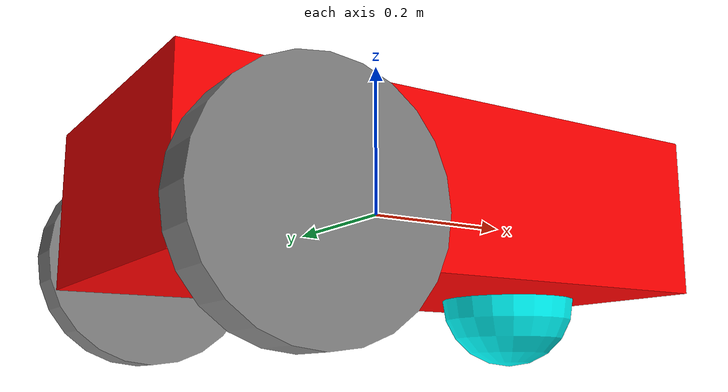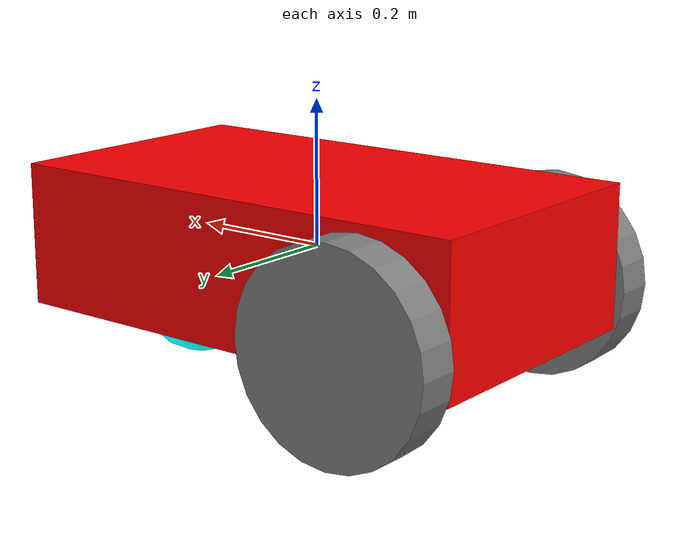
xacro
<?xml version="1.0" ?>
<robot name="ICTE4001Bot" xmlns:xacro="http://ros.org/wiki/xacro">

    <!-- ****************** ROBOT CONSTANTS *******************************  -->

    <!-- Define the size of the robot's main chassis in meters -->
    <xacro:property name="base_width" value="0.39"/>
    <xacro:property name="base_length" value="0.70"/>
    <xacro:property name="base_height" value="0.20"/>

    <!-- Define the shape of the robot's two back wheels in meters -->
    <xacro:property name="wheel_radius" value="0.14"/>
    <xacro:property name="wheel_width" value="0.06"/>
    <!-- Define the gap between the wheel and chassis along y-axis in meters -->
    <xacro:property name="wheel_ygap" value="0.035"/>
    <!-- Position the wheels along the z-axis -->
    <xacro:property name="wheel_zoff" value="0.05"/>
    <!-- Position the wheels along the x-axis -->
    <xacro:property name="wheel_xoff" value="0.221"/>

    <!-- Position the caster wheel along the x-axis -->
    <xacro:property name="caster_xoff" value="0.217"/>

    <!-- ****************** INERTIAL PROPERTY MACROS ************************  -->

    <!-- Define box intertial property macros  -->
    <xacro:macro name="box_inertia" params="m w h d">
        <inertial>
            <mass value="${m}"/>
            <inertia ixx="${(m/12) * (h*h + w*w)}" ixy="0.0" ixz="0.0" iyy="${(m/12) * (h*h + d*d)}" iyz="0.0" izz="${(m/12) * (w*w + d*d)}"/>
        </inertial>
    </xacro:macro>
    <!-- Define cylinder property macros  -->
    <xacro:macro name="cylinder_inertia" params="m r h roll pitch yaw">
		<inertial>
			<origin xyz="0 0 0" rpy="${roll} ${pitch} ${yaw}" />
			<mass value="${m}"/>
			<inertia ixx="${(m/12) * (3*r*r + h*h)}" ixy = "0" ixz = "0" iyy="${(m/12) * (3*r*r + h*h)}" iyz = "0" izz="${(m/2) * (r*r)}"/>
		</inertial>
	</xacro:macro>
    <!-- Define sphere property macros  -->
    <xacro:macro name="sphere_inertia" params="m r">
        <inertial>
            <mass value="${m}"/>
            <inertia ixx="${(2/5) * m * (r*r)}" ixy="0.0" ixz="0.0" iyy="${(2/5) * m * (r*r)}" iyz="0.0" izz="${(2/5) * m * (r*r)}"/>
        </inertial>
    </xacro:macro>
    <!-- ****************** BASE LINK DEFINITIONS ************************  -->
    <link name="base_link">
        <visual>
            <geometry>
                <box size="${base_length} ${base_width} ${base_height}"/>
            </geometry>
            <material name="Red">
                <color rgba="1.0 0.0 0.0 1.0"/>
            </material>
        </visual>
        <collision>
            <geometry>
                <box size="${base_length} ${base_width} ${base_height}"/>
            </geometry>
        </collision>
        <xacro:box_inertia m="15.0" w="${base_width}" d="${base_length}" h="${base_height}"/>
    </link>
    <gazebo reference="base_link">
        <material>Gazebo/Red</material>
    </gazebo>

    <!-- ****************** ROBOT BASE FOOTPRINT ***************************  -->

    <!-- Define the center of the main robot chassis projected on the ground -->
    <link name="base_footprint">
        <xacro:box_inertia m="0" w="0" d="0" h="0"/>
    </link>

    <joint name="base_joint" type="fixed">
        <parent link="base_link"/>
        <child link="base_footprint"/>
        <origin xyz="0.0 0.0 ${-(wheel_radius+wheel_zoff)}" rpy="0 0 0"/>
    </joint>

    <!-- *********************** DRIVE WHEELS ******************************  -->

    <!-- Drive Wheel Macro to Define Two Wheels -->
    <xacro:macro name="wheel" params="prefix x_reflect y_reflect">
        <link name="${prefix}_link">
            <visual>
                <origin xyz="0 0 0" rpy="${pi/2} 0 0"/>
                <geometry>
                    <cylinder radius="${wheel_radius}" length="${wheel_width}"/>
                </geometry>
                <material name="Gray">
                    <color rgba="0.5 0.5 0.5 1.0"/>
                </material>
            </visual>

            <collision>
                <origin xyz="0 0 0" rpy="${pi/2} 0 0"/>
                <geometry>
                    <cylinder radius="${wheel_radius}" length="${wheel_width}"/>
                </geometry>
            </collision>
            <xacro:cylinder_inertia m="0.5" r="${wheel_radius}" h="${wheel_width}" roll = "${pi/2}" pitch = "0.0" yaw = "0.0"/>
        </link>
        <!-- Connect the wheels to the base_link at the appropriate location, and
        define a continuous joint to allow the wheels to freely rotate about
        an axis -->
        <joint name="${prefix}_joint" type="continuous">
			<parent link="base_link"/>
			<child link="${prefix}_link"/>
			<origin xyz="${x_reflect*wheel_xoff} ${y_reflect*(base_width/2+wheel_ygap)} ${-wheel_zoff}" rpy="0 0 0"/>
			<axis xyz="0 1 0"/>
		</joint>

        <gazebo reference="{prefix}_link">
            <mu1>1.0</mu1>
            <mu2>1.0</mu2>
            <kp>1000000.0</kp>
            <kd>100.0</kd>
            <minDepth>0.0001</minDepth>
            <maxVel>1.0</maxVel>
            <material>Gazebo/DarkGrey</material>
		</gazebo>

    </xacro:macro>

    <xacro:wheel prefix="drivewhl_l" x_reflect="-1" y_reflect="1" />
    <xacro:wheel prefix="drivewhl_r" x_reflect="-1" y_reflect="-1" />

    <!-- *********************** CASTER WHEEL ******************************  -->
    <link name="front_caster">
		<visual>
			<geometry>
				<sphere radius="${(wheel_radius+wheel_zoff-(base_height/2))}"/>
			</geometry>
			<material name="Cyan">
				<color rgba="0 1.0 1.0 1.0"/>
			</material>
		</visual>

		<collision>
			<origin xyz="0 0 0" rpy="0 0 0"/>
			<geometry>
				<sphere radius="${(wheel_radius+wheel_zoff-(base_height/2))}"/>
			</geometry>
		</collision>

		<xacro:sphere_inertia m="0.5" r="${(wheel_radius+wheel_zoff-(base_height/2))}"/>
    </link>

    <gazebo reference="front_caster">
		<mu1>0.01</mu1>
		<mu2>0.01</mu2>
		<material>Gazebo/White</material>
	</gazebo>

    <joint name="caster_joint" type="fixed">
		<parent link="base_link"/>
		<child link="front_caster"/>
		<origin xyz="${caster_xoff} 0.0 ${-(base_height/2)}" rpy="0 0 0"/>
	</joint>

</robot>
